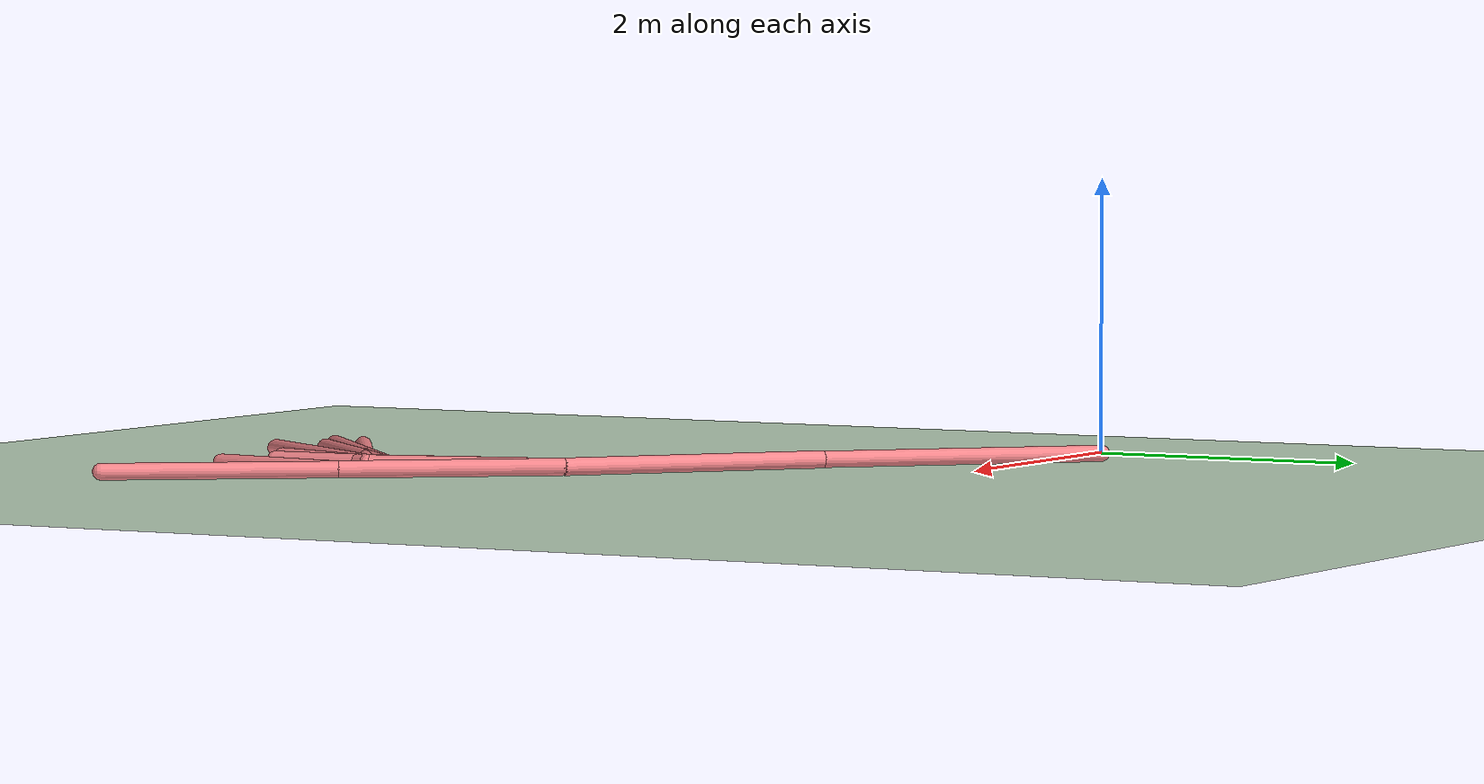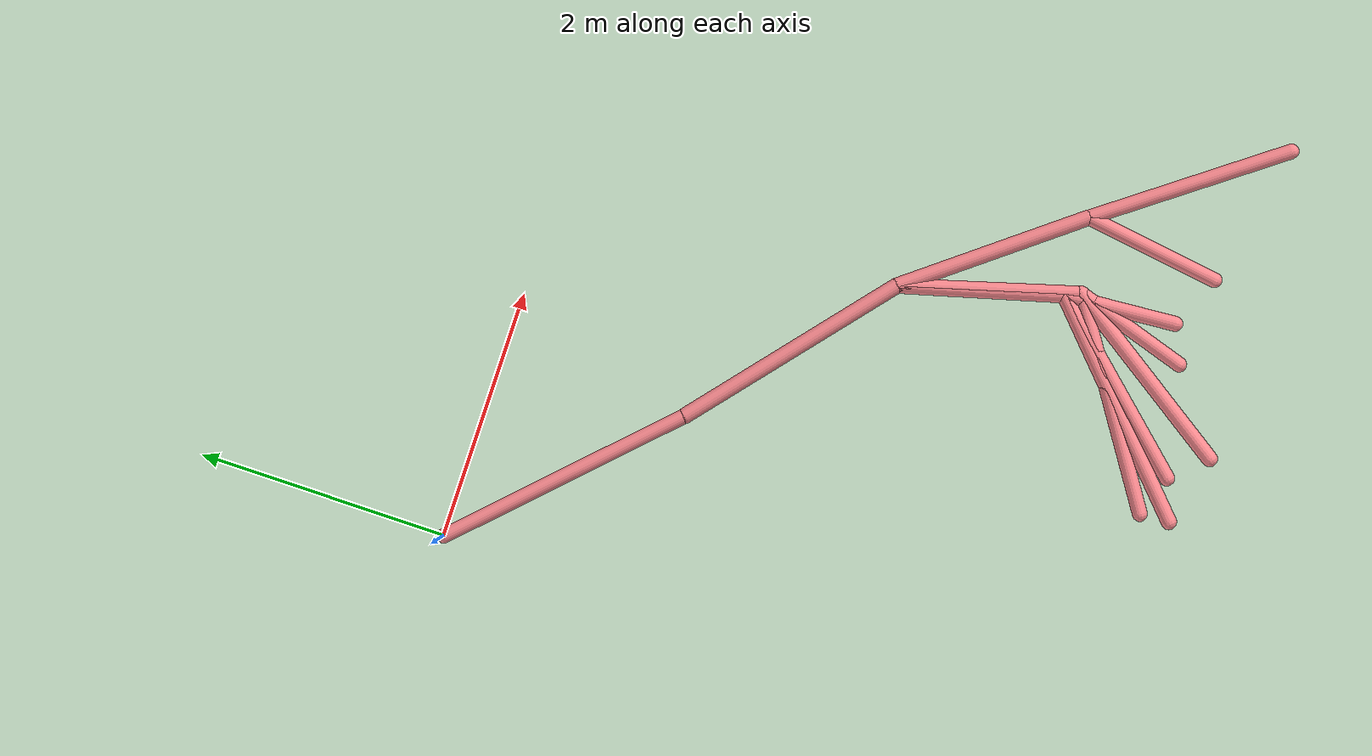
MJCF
<mujoco model="swimmer">
  <compiler angle="degree" coordinate="global" inertiafromgeom="true"/>
  <option collision="predefined" density="4000" integrator="RK4" timestep="0.01" viscosity="0.1"/>
  <default>
    <geom conaffinity="1" condim="1" contype="1" margin="0.001" rgba=".98 .54 .56 1."/>
    <joint armature="0.1"/>
  </default>
  <visual>
    <headlight ambient=".1 .1 .1" diffuse=".6 .6 .6" specular="0.3 0.3 0.3"/>
    <map znear=".01"/>
    <quality shadowsize="16384"/>
  </visual>
  <worldbody>
    <light cutoff="100" diffuse="1 1 1" dir="-1 0 -1.3" directional="true" exponent="1" pos="1 0 1.3" specular=".1 .1 .1" castshadow="true"/>
    <geom conaffinity="1" condim="3" name="floor" pos="0 0 -0.1" rgba="0.8 0.9 0.8 1" size="40 40 0.1" type="plane" material="grid_new"/>
    <body name="0" pos="0 0 0">
      <camera name="track" mode="trackcom" pos="0 -3 3" xyaxes="1 0 0 0 1 1"/>
      <joint axis="1 0 0" name="slider1" pos="0 0 0" type="slide"/>
      <joint axis="0 1 0" name="slider2" pos="0 0 0" type="slide"/>
      <joint axis="0 0 1" name="0_joint" pos="0 0 0" type="hinge"/>
      <geom density="1000" fromto="-0.000574 0.000576 0 1.493956 -1.499944 0" size="0.060003" type="capsule"/>
      <body name="1" pos="1.493956 -1.499944 0">
        <joint axis="0 0 1" limited="true" name="1_joint" pos="1.493956 -1.499944 0" range="-100 100" type="hinge"/>
        <geom density="1000" fromto="1.493936 -1.499927 0 2.992445 -2.758988 0" size="0.063239" type="capsule"/>
        <body name="11" pos="2.992445 -2.758988 0">
          <joint axis="0 0 1" limited="true" name="11_joint" pos="2.992445 -2.758988 0" range="-100 100" type="hinge"/>
          <geom density="1000" fromto="2.992441 -2.758974 0 3.391381 -4.156804 0" size="0.060619" type="capsule"/>
          <body name="111" pos="3.391381 -4.156804 0">
            <joint axis="0 0 1" limited="true" name="111_joint" pos="3.391381 -4.156804 0" range="-100 100" type="hinge"/>
            <geom density="1000" fromto="3.391496 -4.156729 0 1.891863 -5.141243 0" size="0.06018" type="capsule"/>
          </body>
          <body name="211" pos="3.391381 -4.156804 0">
            <joint axis="0 0 1" limited="true" name="211_joint" pos="3.391381 -4.156804 0" range="-100 100" type="hinge"/>
            <geom density="1000" fromto="3.391383 -4.156797 0 3.105201 -5.064355 0" size="0.060091" type="capsule"/>
          </body>
          <body name="311" pos="3.391381 -4.156804 0">
            <joint axis="0 0 1" limited="true" name="311_joint" pos="3.391381 -4.156804 0" range="-100 100" type="hinge"/>
            <geom density="1000" fromto="3.391508 -4.156615 0 2.476651 -5.525623 0" size="0.063979" type="capsule"/>
          </body>
        </body>
        <body name="21" pos="2.992445 -2.758988 0">
          <joint axis="0 0 1" limited="true" name="21_joint" pos="2.992445 -2.758988 0" range="-100 100" type="hinge"/>
          <geom density="1000" fromto="2.99129 -2.754706 0 3.336609 -4.034975 0" size="0.060396" type="capsule"/>
          <body name="121" pos="3.336609 -4.034975 0">
            <joint axis="0 0 1" limited="true" name="121_joint" pos="3.336609 -4.034975 0" range="-100 100" type="hinge"/>
            <geom density="1000" fromto="3.336778 -4.034816 0 1.904882 -5.377961 0" size="0.062603" type="capsule"/>
          </body>
          <body name="221" pos="3.336609 -4.034975 0">
            <joint axis="0 0 1" limited="true" name="221_joint" pos="3.336609 -4.034975 0" range="-100 100" type="hinge"/>
            <geom density="1000" fromto="3.336614 -4.034969 0 2.225618 -5.255776 0" size="0.061522" type="capsule"/>
          </body>
          <body name="321" pos="3.336609 -4.034975 0">
            <joint axis="0 0 1" limited="true" name="321_joint" pos="3.336609 -4.034975 0" range="-100 100" type="hinge"/>
            <geom density="1000" fromto="3.336589 -4.0347 0 3.399947 -4.934864 0" size="0.060472" type="capsule"/>
          </body>
        </body>
        <body name="31" pos="2.992445 -2.758988 0">
          <joint axis="0 0 1" limited="true" name="31_joint" pos="2.992445 -2.758988 0" range="-100 100" type="hinge"/>
          <geom density="1000" fromto="2.992083 -2.758523 0 3.978041 -4.023723 0" size="0.062389" type="capsule"/>
          <body name="131" pos="3.978041 -4.023723 0">
            <joint axis="0 0 1" limited="true" name="131_joint" pos="3.978041 -4.023723 0" range="-100 100" type="hinge"/>
            <geom density="1000" fromto="3.977977 -4.023636 0 4.976845 -5.373496 0" size="0.06" type="capsule"/>
          </body>
          <body name="231" pos="3.978041 -4.023723 0">
            <joint axis="0 0 1" limited="true" name="231_joint" pos="3.978041 -4.023723 0" range="-100 100" type="hinge"/>
            <geom density="1000" fromto="3.978058 -4.02361 0 3.823016 -5.118712 0" size="0.060129" type="capsule"/>
          </body>
        </body>
      </body>
    </body>
  </worldbody>
  <actuator>
    <motor ctrllimited="true" ctrlrange="-1 1" gear="299.962593" joint="1_joint" name="1_joint"/>
    <motor ctrllimited="true" ctrlrange="-1 1" gear="251.828984" joint="11_joint" name="11_joint"/>
    <motor ctrllimited="true" ctrlrange="-1 1" gear="222.456877" joint="21_joint" name="21_joint"/>
    <motor ctrllimited="true" ctrlrange="-1 1" gear="242.281424" joint="111_joint" name="111_joint"/>
    <motor ctrllimited="true" ctrlrange="-1 1" gear="233.890272" joint="31_joint" name="31_joint"/>
    <motor ctrllimited="true" ctrlrange="-1 1" gear="267.847452" joint="211_joint" name="211_joint"/>
    <motor ctrllimited="true" ctrlrange="-1 1" gear="255.910455" joint="121_joint" name="121_joint"/>
    <motor ctrllimited="true" ctrlrange="-1 1" gear="221.034366" joint="311_joint" name="311_joint"/>
    <motor ctrllimited="true" ctrlrange="-1 1" gear="288.793579" joint="221_joint" name="221_joint"/>
    <motor ctrllimited="true" ctrlrange="-1 1" gear="295.703887" joint="131_joint" name="131_joint"/>
    <motor ctrllimited="true" ctrlrange="-1 1" gear="192.914473" joint="321_joint" name="321_joint"/>
    <motor ctrllimited="true" ctrlrange="-1 1" gear="186.227559" joint="231_joint" name="231_joint"/>
  </actuator>
  <asset>
    <texture type="skybox" builtin="gradient" rgb1=".4 .5 .6" rgb2="0 0 0" width="100" height="100"/>
    <texture builtin="flat" height="1278" mark="cross" markrgb="1 1 1" name="texgeom" random="0.01" rgb1="0.8 0.6 0.4" rgb2="0.8 0.6 0.4" type="cube" width="127"/>
    <texture builtin="checker" height="100" name="texplane" rgb1="0 0 0" rgb2="0.8 0.8 0.8" type="2d" width="100"/>
    <material name="MatPlane" reflectance="0.5" shininess="1" specular="1" texrepeat="60 60" texture="texplane"/>
    <material name="geom" texture="texgeom" texuniform="true"/>
    <texture name="grid_new" type="2d" builtin="checker" rgb1=".1 .3 .2" rgb2=".2 .4 .3" width="1000" height="1000" mark="none" markrgb=".8 .6 .4"/>
    <material name="grid_new" texture="grid_new" texrepeat="0.2 0.2" texuniform="true" reflectance=".2"/>
  </asset>
</mujoco>
